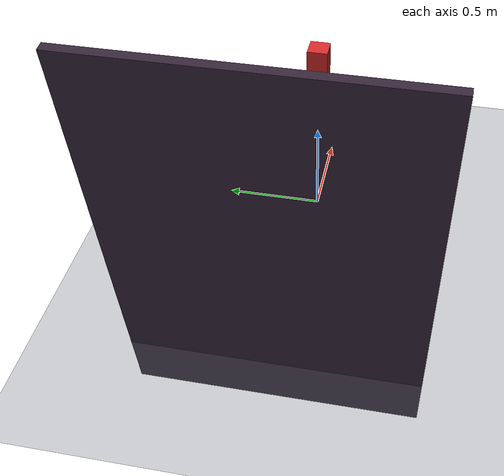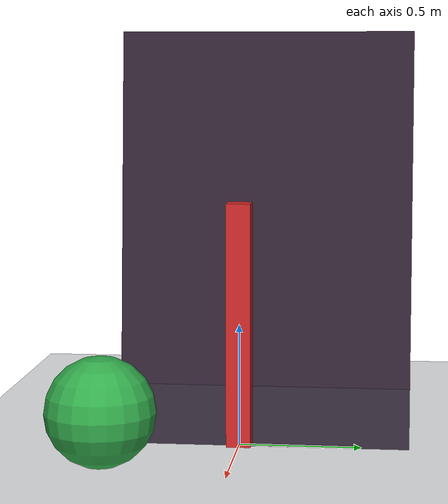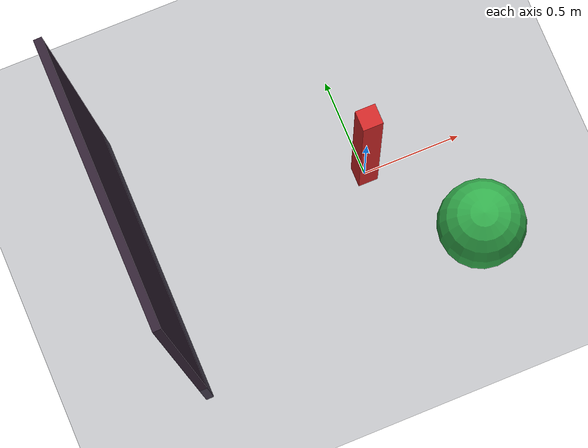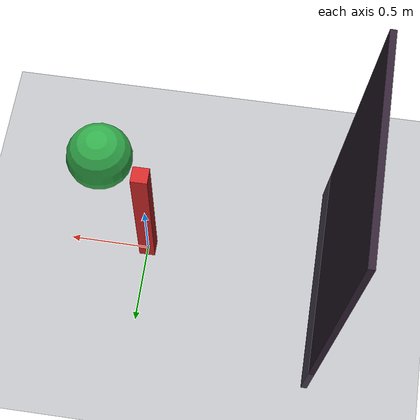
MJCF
<mujoco model="Reflection: cube texture">

  <asset>
    <texture name="sky" type="skybox" builtin="gradient" rgb1=".18 .22 .30" rgb2=".55 .58 .62" width="32" height="512"/>
    <texture name="ibl" type="cube" builtin="gradient" rgb1=".32 .35 .40" rgb2=".58 .56 .52" width="32" height="32"/>
    <texture name="tint" type="cube" builtin="gradient" rgb1=".10 .12 .30" rgb2=".30 .16 .12" width="64" height="64"/>
    <material name="floor"  rgba=".32 .34 .38 1"/>
    <material name="mirror" texture="tint" reflectance=".8"/>
    <material name="post"   rgba=".82 .16 .16 1"/>
    <material name="ball"   rgba=".20 .68 .30 1"/>
  </asset>

  <worldbody>
    <camera name="default" pos="2.997 -1.006 2.846" xyaxes="0.250 0.968 0.000 -0.455 0.118 0.882"/>
    <light pos="1.5 0.6 2.6" dir="-0.6 -0.2 -2" cutoff="55" range="20" intensity="800000"
           castshadow="true" ambient=".1 .1 .12" type="spot"/>
    <light type="image" texture="ibl" intensity="8000"/>

    <geom name="floor"  type="plane" size="3 3 .1" material="floor"/>
    <geom name="mirror" type="box"   size="1.0 0.7 0.02" material="mirror" pos="-1.2 0 0.7" euler="0 85 0"/>
    <geom name="post"   type="box"    material="post" size=".05 .05 .5" pos="0 0 0.5"/>
    <geom name="ball"   type="sphere" material="ball" size=".22" pos="0.4 -0.5 0.22"/>
  </worldbody>
</mujoco>
